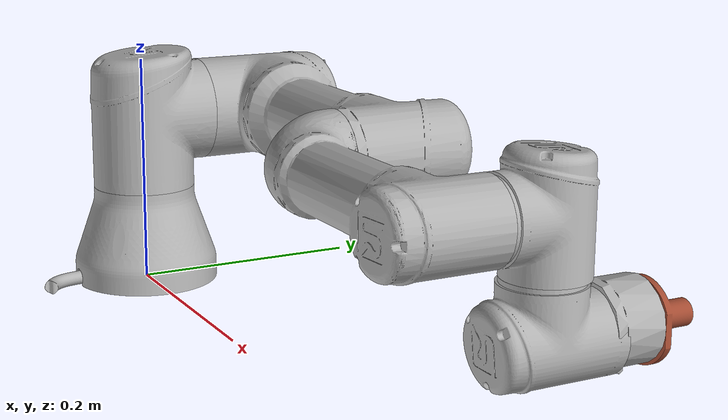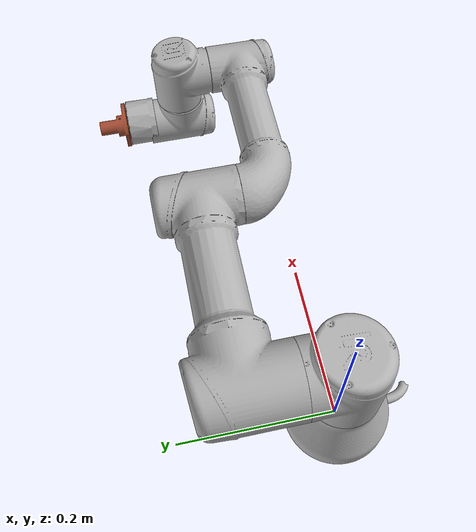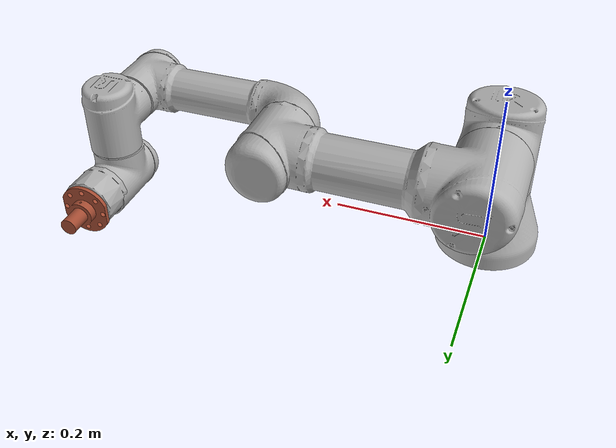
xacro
<?xml version="1.0"?>
<robot name="ur3" xmlns:xacro="http://ros.org/wiki/xacro">

  <xacro:arg name="grasp_plugin" default="false" />
  <xacro:arg name="peg_shape" default="cylinder" />

  <xacro:include filename="$(find ur3_description)/urdf/ur3_joint_limited_robot.urdf.xacro" />

  <link name="robotiq_coupler">
    <visual>
      <geometry>
        <mesh filename="package://ur3_description/meshes/gripper/$(arg peg_shape)_gripper.dae" />
      </geometry>
    </visual>
    <collision>
      <geometry>
        <mesh filename="package://ur3_description/meshes/gripper/$(arg peg_shape)_gripper.dae" />
      </geometry>
    </collision>
    <inertial>
      <origin xyz="0   0  0" rpy="0 0 0" />
      <mass value="0.1" />
      <inertia ixx="1" ixy="0" ixz="0"
               iyy="1" iyz="0" izz="1"/>
    </inertial>
  </link>

  <joint name="robotiq_coupler_joint" type="fixed">
    <origin xyz="0 0 0" rpy="${-pi/2.0} 0 0" />
    <parent link="tool0"/>
    <child link="robotiq_coupler"/>
  </joint>
  <gazebo reference="robotiq_coupler">
    <mu1>0.9</mu1>
    <mu2>0.9</mu2>
    <material>Gazebo/Bricks</material>
  </gazebo>

  <!-- Equivalent to the OpenRAVE manipulator denso_robotiq_85_gripper -->
  <link name="ur3_robotiq_85_gripper" />
  <joint name="manipulator_dummy_joint" type="fixed">
    <origin xyz="0 0 0.1441" rpy="0 0 0" />
    <parent link="robotiq_coupler"/>
    <child link="ur3_robotiq_85_gripper"/>
  </joint>

  <!-- Attach the robotiq 85 gripper -->

  <!-- Gazebo FT sensor plugin -->
  <gazebo reference="wrist_3_link-tool0_fixed_joint">
    <provideFeedback>true</provideFeedback>
  </gazebo>
  <gazebo>
    <plugin name="ft_sensor" filename="libgazebo_ros_ft_sensor.so">
      <updateRate>100.0</updateRate>
      <topicName>wrench</topicName>
      <gaussianNoise>0.0</gaussianNoise>
      <jointName>wrist_3_link-tool0_fixed_joint</jointName>
    </plugin>
  </gazebo>

</robot>

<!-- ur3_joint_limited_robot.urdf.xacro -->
<robot xmlns:xacro="http://ros.org/wiki/xacro"
       name="ur3" >

  <!-- common stuff -->
  <xacro:include filename="$(find ur3_description)/urdf/common.gazebo.xacro" />

  <!-- ur3 -->
  <xacro:include filename="$(find ur3_description)/urdf/ur3.urdf.xacro" />

  <!-- arm -->
  <xacro:ur3_robot prefix="" joint_limited="true"
    shoulder_pan_lower_limit="${-pi}" shoulder_pan_upper_limit="${pi}"
    shoulder_lift_lower_limit="${-pi}" shoulder_lift_upper_limit="${pi}"
    elbow_joint_lower_limit="${-pi}" elbow_joint_upper_limit="${pi}"
    wrist_1_lower_limit="${-pi}" wrist_1_upper_limit="${pi}"
    wrist_2_lower_limit="${-pi}" wrist_2_upper_limit="${pi}"
    wrist_3_lower_limit="${-pi}" wrist_3_upper_limit="${pi}"
  />

  <link name="world" />

  <joint name="world_joint" type="fixed">
    <parent link="world" />
    <child link = "base_link" />
    <origin xyz="0.0 0.0 0.0" rpy="0.0 0.0 0.0" />
  </joint>

</robot>

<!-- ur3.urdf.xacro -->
<robot xmlns:xacro="http://ros.org/wiki/xacro">

<!--
  Author: Felix Messmer
  Updated by: Cristian Beltran
-->
  <xacro:arg name="use_effort_interface" default="false" />

  <xacro:include filename="$(find ur3_description)/urdf/ur.transmission.xacro" />
  <xacro:include filename="$(find ur3_description)/urdf/ur.gazebo.xacro" />

   <xacro:macro name="cylinder_inertial" params="radius length mass *origin">
    <inertial>
      <mass value="${mass}" />
      <xacro:insert_block name="origin" />
      <inertia ixx="${0.0833333 * mass * (3 * radius * radius + length * length)}" ixy="0.0" ixz="0.0"
        iyy="${0.0833333 * mass * (3 * radius * radius + length * length)}" iyz="0.0"
        izz="${0.5 * mass * radius * radius}" />
    </inertial>
  </xacro:macro>

  <xacro:macro name="ur3_robot" params="prefix joint_limited
     shoulder_pan_lower_limit:=${-pi}    shoulder_pan_upper_limit:=${pi}
     shoulder_lift_lower_limit:=${-pi}    shoulder_lift_upper_limit:=${pi}
     elbow_joint_lower_limit:=${-pi}    elbow_joint_upper_limit:=${pi}
     wrist_1_lower_limit:=${-pi}    wrist_1_upper_limit:=${pi}
     wrist_2_lower_limit:=${-pi}    wrist_2_upper_limit:=${pi}
     wrist_3_lower_limit:=${-pi}    wrist_3_upper_limit:=${pi}">

    <!-- Inertia parameters -->
    <xacro:property name="base_mass" value="2.0" />  <!-- This mass might be incorrect -->
    <xacro:property name="shoulder_mass" value="2.0" />
    <xacro:property name="upper_arm_mass" value="3.42" />
    <xacro:property name="forearm_mass" value="1.26" />
    <xacro:property name="wrist_1_mass" value="0.8" />
    <xacro:property name="wrist_2_mass" value="0.8" />
    <xacro:property name="wrist_3_mass" value="0.35" />

    <xacro:property name="shoulder_cog" value="0.0 -0.02 0.0" />
    <xacro:property name="upper_arm_cog" value="0.13 0.0 0.1157" />
    <xacro:property name="forearm_cog" value="0.05 0.0 0.0238" />
    <xacro:property name="wrist_1_cog" value="0.0 0.0 0.01" />
    <xacro:property name="wrist_2_cog" value="0.0 0.0 0.01" />
    <xacro:property name="wrist_3_cog" value="0.0 0.0 -0.02" />

    <!-- Kinematic model -->
    <!-- Properties from urcontrol.conf -->
    <xacro:property name="d1" value="0.1519" />
    <xacro:property name="a2" value="-0.24365" />
    <xacro:property name="a3" value="-0.21325" />
    <xacro:property name="d4" value="0.11235" />
    <xacro:property name="d5" value="0.08535" />
    <xacro:property name="d6" value="0.0819" />

    <!-- Arbitrary offsets for shoulder/elbow joints -->
    <xacro:property name="shoulder_offset" value="0.1198" />  <!-- measured from model -->
    <xacro:property name="elbow_offset" value="-0.0925" /> <!-- measured from model -->

    <!-- link lengths used in model -->
    <xacro:property name="shoulder_height" value="${d1}" />
    <xacro:property name="upper_arm_length" value="${-a2}" />
    <xacro:property name="forearm_length" value="${-a3}" />
    <xacro:property name="wrist_1_length" value="${d4 - elbow_offset - shoulder_offset}" />
    <xacro:property name="wrist_2_length" value="${d5}" />
    <xacro:property name="wrist_3_length" value="${d6}" />

    <link name="${prefix}base_link" >
      <visual>
        <geometry>
          <mesh filename="package://ur_description/meshes/ur3/visual/base.dae"/>
        </geometry>
        <material name="LightGrey">
          <color rgba="0.7 0.7 0.7 1.0"/>
        </material>
      </visual>
      <collision>
        <geometry>
          <mesh filename="package://ur_description/meshes/ur3/collision/base.stl"/>
        </geometry>
      </collision>
      <xacro:cylinder_inertial radius="0.075" length="0.038" mass="${base_mass}">
        <origin xyz="0.0 0.0 0.0" rpy="0 0 0" />
      </xacro:cylinder_inertial>
    </link>

    <joint name="${prefix}shoulder_pan_joint" type="revolute">
      <parent link="${prefix}base_link" />
      <child link = "${prefix}shoulder_link" />
      <origin xyz="0.0 0.0 ${shoulder_height}" rpy="0.0 0.0 0.0" />
      <axis xyz="0 0 1" />
      <xacro:unless value="${joint_limited}">
        <limit lower="${-2.0 * pi}" upper="${2.0 * pi}" effort="330.0" velocity="2.16"/>
      </xacro:unless>
      <xacro:if value="${joint_limited}">
        <limit lower="${shoulder_pan_lower_limit}" upper="${shoulder_pan_upper_limit}" effort="330.0" velocity="2.16"/>
      </xacro:if>
      <dynamics damping="0.0" friction="0.0"/>
    </joint>

    <link name="${prefix}shoulder_link">
      <visual>
        <geometry>
          <mesh filename="package://ur_description/meshes/ur3/visual/shoulder.dae"/>
        </geometry>
        <material name="LightGrey">
          <color rgba="0.7 0.7 0.7 1.0"/>
        </material>
      </visual>
      <collision>
        <geometry>
          <mesh filename="package://ur_description/meshes/ur3/collision/shoulder.stl"/>
        </geometry>
      </collision>
      <xacro:cylinder_inertial radius="0.075" length="0.178" mass="${shoulder_mass}">
        <origin xyz="0.0 0.0 0.0" rpy="0 0 0" />
      </xacro:cylinder_inertial>
    </link>

    <joint name="${prefix}shoulder_lift_joint" type="revolute">
      <parent link="${prefix}shoulder_link" />
      <child link = "${prefix}upper_arm_link" />
      <origin xyz="0.0 ${shoulder_offset} 0.0" rpy="0.0 ${pi / 2.0} 0.0" />
      <axis xyz="0 1 0" />
      <xacro:unless value="${joint_limited}">
        <limit lower="${-2.0 * pi}" upper="${2.0 * pi}" effort="330.0" velocity="2.16"/>
      </xacro:unless>
      <xacro:if value="${joint_limited}">
        <limit lower="${shoulder_lift_lower_limit}" upper="${shoulder_lift_upper_limit}" effort="330.0" velocity="2.16"/>
      </xacro:if>
      <dynamics damping="0.0" friction="0.0"/>
    </joint>

    <link name="${prefix}upper_arm_link">
      <visual>
        <geometry>
          <mesh filename="package://ur_description/meshes/ur3/visual/upperarm.dae"/>
        </geometry>
        <material name="LightGrey">
          <color rgba="0.7 0.7 0.7 1.0"/>
        </material>
      </visual>
      <collision>
        <geometry>
          <mesh filename="package://ur_description/meshes/ur3/collision/upperarm.stl"/>
        </geometry>
      </collision>
      <xacro:cylinder_inertial radius="0.075" length="${-a2}" mass="${upper_arm_mass}">
        <origin xyz="0.0 0.0 ${-a2/2.0}" rpy="0 0 0" />
      </xacro:cylinder_inertial>
    </link>

    <joint name="${prefix}elbow_joint" type="revolute">
      <parent link="${prefix}upper_arm_link" />
      <child link = "${prefix}forearm_link" />
      <origin xyz="0.0 ${elbow_offset} ${upper_arm_length}" rpy="0.0 0.0 0.0" />
      <axis xyz="0 1 0" />
      <xacro:unless value="${joint_limited}">
        <limit lower="${-pi}" upper="${pi}" effort="150.0" velocity="3.15"/>
      </xacro:unless>
      <xacro:if value="${joint_limited}">
        <limit lower="${elbow_joint_lower_limit}" upper="${elbow_joint_upper_limit}" effort="150.0" velocity="3.15"/>
      </xacro:if>
      <dynamics damping="0.0" friction="0.0"/>
    </joint>

    <link name="${prefix}forearm_link">
      <visual>
         <geometry>
          <mesh filename="package://ur_description/meshes/ur3/visual/forearm.dae"/>
        </geometry>
        <material name="LightGrey">
          <color rgba="0.7 0.7 0.7 1.0"/>
        </material>
      </visual>
      <collision>
        <geometry>
          <mesh filename="package://ur_description/meshes/ur3/collision/forearm.stl"/>
        </geometry>
      </collision>
      <xacro:cylinder_inertial radius="0.075" length="${-a3}" mass="${forearm_mass}">
        <origin xyz="0.0 0.0 ${-a3/2.0}" rpy="0 0 0" />
      </xacro:cylinder_inertial>
    </link>

    <joint name="${prefix}wrist_1_joint" type="revolute">
      <parent link="${prefix}forearm_link" />
      <child link = "${prefix}wrist_1_link" />
      <origin xyz="0.0 0.0 ${forearm_length}" rpy="0.0 ${pi / 2.0} 0.0" />
      <axis xyz="0 1 0" />
      <xacro:unless value="${joint_limited}">
        <limit lower="${-2.0 * pi}" upper="${2.0 * pi}" effort="54.0" velocity="3.2"/>
      </xacro:unless>
      <xacro:if value="${joint_limited}">
        <limit lower="${wrist_1_lower_limit}" upper="${wrist_1_upper_limit}" effort="54.0" velocity="3.2"/>
      </xacro:if>
      <dynamics damping="0.0" friction="0.0"/>
    </joint>

    <link name="${prefix}wrist_1_link">
      <visual>
        <geometry>
          <mesh filename="package://ur_description/meshes/ur3/visual/wrist1.dae"/>
        </geometry>
        <material name="LightGrey">
          <color rgba="0.7 0.7 0.7 1.0"/>
        </material>
      </visual>
      <collision>
        <geometry>
          <mesh filename="package://ur_description/meshes/ur3/collision/wrist1.stl"/>
        </geometry>
      </collision>
      <xacro:cylinder_inertial radius="0.075" length="0.12" mass="${wrist_1_mass}">
        <origin xyz="0.0 0.0 0.0" rpy="0 0 0" />
      </xacro:cylinder_inertial>
    </link>

    <joint name="${prefix}wrist_2_joint" type="revolute">
      <parent link="${prefix}wrist_1_link" />
      <child link = "${prefix}wrist_2_link" />
      <origin xyz="0.0 ${wrist_1_length} 0.0" rpy="0.0 0.0 0.0" />
      <axis xyz="0 0 1" />
      <xacro:unless value="${joint_limited}">
        <limit lower="${-2.0 * pi}" upper="${2.0 * pi}" effort="54.0" velocity="3.2"/>
      </xacro:unless>
      <xacro:if value="${joint_limited}">
        <limit lower="${wrist_2_lower_limit}" upper="${wrist_2_upper_limit}" effort="54.0" velocity="3.2"/>
      </xacro:if>
      <dynamics damping="0.0" friction="0.0"/>
    </joint>

    <link name="${prefix}wrist_2_link">
      <visual>
        <geometry>
          <mesh filename="package://ur_description/meshes/ur3/visual/wrist2.dae"/>
        </geometry>
        <material name="LightGrey">
          <color rgba="0.7 0.7 0.7 1.0"/>
        </material>
      </visual>
      <collision>
        <geometry>
          <mesh filename="package://ur_description/meshes/ur3/collision/wrist2.stl"/>
        </geometry>
      </collision>
      <xacro:cylinder_inertial radius="0.075" length="0.12" mass="${wrist_2_mass}">
        <origin xyz="0.0 0.0 0.0" rpy="0 0 0" />
      </xacro:cylinder_inertial>
    </link>

    <joint name="${prefix}wrist_3_joint" type="revolute">
      <parent link="${prefix}wrist_2_link" />
      <child link = "${prefix}wrist_3_link" />
      <origin xyz="0.0 0.0 ${wrist_2_length}" rpy="0.0 0.0 0.0" />
      <axis xyz="0 1 0" />
      <xacro:unless value="${joint_limited}">
        <limit lower="${-2.0 * pi}" upper="${2.0 * pi}" effort="54.0" velocity="3.2"/>
      </xacro:unless>
      <xacro:if value="${joint_limited}">
        <limit lower="${wrist_3_lower_limit}" upper="${wrist_3_upper_limit}" effort="54.0" velocity="3.2"/>
      </xacro:if>
      <dynamics damping="0.0" friction="0.0"/>
    </joint>

    <link name="${prefix}wrist_3_link">
      <visual>
        <geometry>
          <mesh filename="package://ur_description/meshes/ur3/visual/wrist3.dae"/>
        </geometry>
        <material name="LightGrey">
          <color rgba="0.7 0.7 0.7 1.0"/>
        </material>
      </visual>
      <collision>
        <geometry>
          <mesh filename="package://ur_description/meshes/ur3/collision/wrist3.stl"/>
        </geometry>
      </collision>
      <xacro:cylinder_inertial radius="0.075" length="0.12" mass="${wrist_3_mass}">
        <origin xyz="0.0 0.0 0.0" rpy="0 0 0" />
      </xacro:cylinder_inertial>
    </link>

    <joint name="${prefix}ee_fixed_joint" type="fixed">
      <parent link="${prefix}wrist_3_link" />
      <child link = "${prefix}ee_link" />
      <origin xyz="0.0 ${wrist_3_length} 0.0" rpy="0.0 0.0 ${pi/2.0}" />
    </joint>

    <link name="${prefix}ee_link">
      <collision>
        <geometry>
          <box size="0.01 0.01 0.01"/>
        </geometry>
        <origin rpy="0 0 0" xyz="-0.01 0 0"/>
      </collision>
    </link>

    <xacro:if value="$(arg use_effort_interface)">
      <xacro:ur_arm_transmission prefix="${prefix}" joint_interface="EffortJointInterface" />
    </xacro:if>
    <xacro:unless value="$(arg use_effort_interface)">
      <xacro:ur_arm_transmission prefix="${prefix}" joint_interface="PositionJointInterface" />
    </xacro:unless>
    <xacro:ur_arm_gazebo prefix="${prefix}" />

    <!-- ROS base_link to UR 'Base' Coordinates transform -->
    <link name="${prefix}base"/>
    <joint name="${prefix}base_link-base_fixed_joint" type="fixed">
      <!-- NOTE: this rotation is only needed as long as base_link itself is
                 not corrected wrt the real robot (ie: rotated over 180
                 degrees)
      -->
      <origin xyz="0 0 0" rpy="0 0 ${-pi}"/>
      <parent link="${prefix}base_link"/>
      <child link="${prefix}base"/>
    </joint>

    <!-- Frame coincident with all-zeros TCP on UR controller -->
    <link name="${prefix}tool0"/>
    <joint name="${prefix}wrist_3_link-tool0_fixed_joint" type="fixed">
      <origin xyz="0 ${wrist_3_length} 0" rpy="${pi/-2.0} 0 0"/>
      <parent link="${prefix}wrist_3_link"/>
      <child link="${prefix}tool0"/>
    </joint>

    <gazebo reference="${prefix}wrist_3_link-tool0_fixed_joint">
      <disableFixedJointLumping>true</disableFixedJointLumping>
    </gazebo>

  </xacro:macro>
</robot>
